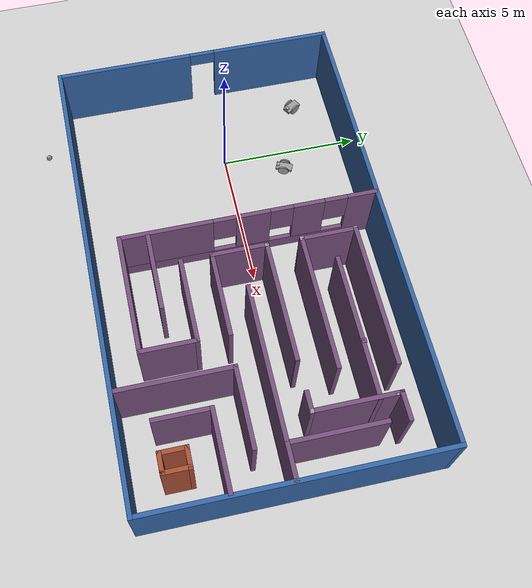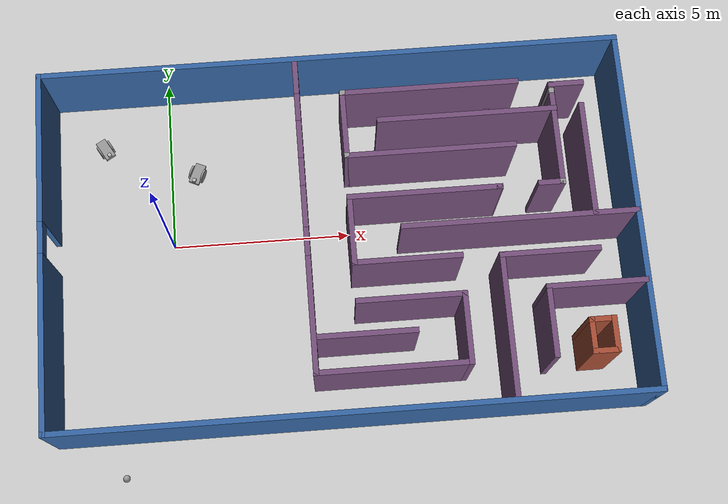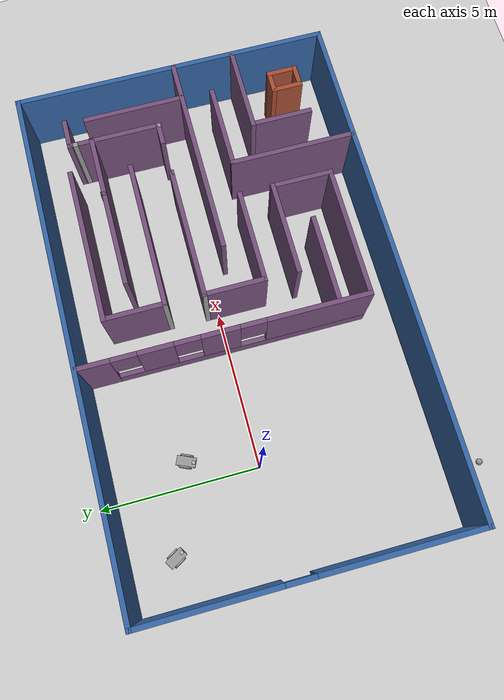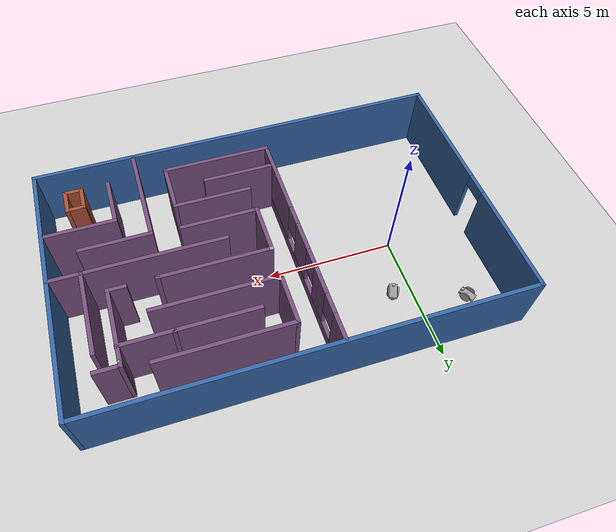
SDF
<sdf version="1.6">
 <world name="default">
  <light name="sun" type="directional">
   <pose>0 0 10 0 -0 0</pose>
   <diffuse>0.8 0.8 0.8 1</diffuse>
   <specular>0.2 0.2 0.2 1</specular>
   <attenuation>
    <range>1000</range>
    <constant>0.9</constant>
    <linear>0.01</linear>
    <quadratic>0.001</quadratic>
   </attenuation>
   <direction>-0.5 0.1 -0.9</direction>
  </light>
  <model name="ground_plane">
   <static>1</static>
   <link name="link">
    <collision name="collision">
     <geometry><plane><normal>0 0 1</normal><size>100 100</size></plane></geometry>
     <surface>
      <contact><collide_bitmask>65535</collide_bitmask></contact>
      <friction><ode><mu>100</mu><mu2>50</mu2></ode></friction>
     </surface>
    </collision>
    <visual name="visual">
     <cast_shadows>0</cast_shadows>
     <geometry><plane><normal>0 0 1</normal><size>100 100</size></plane></geometry>
     <material>
      <script><uri>file://media/materials/scripts/gazebo.material</uri><name>Gazebo/Grey</name></script>
     </material>
    </visual>
   </link>
  </model>
  <gravity>0 0 -9.8</gravity>
  <magnetic_field>6e-06 2.3e-05 -4.2e-05</magnetic_field>
  <atmosphere type="adiabatic"/>
  <physics name="default_physics" default="0" type="ode">
   <max_step_size>0.001</max_step_size>
   <real_time_factor>1</real_time_factor>
   <real_time_update_rate>1000</real_time_update_rate>
  </physics>
  <scene><ambient>0.4 0.4 0.4 1</ambient><background>0.7 0.7 0.7 1</background><shadows>1</shadows></scene>
  <audio><device>default</device></audio>
  <spherical_coordinates>
   <surface_model>EARTH_WGS84</surface_model>
   <latitude_deg>0</latitude_deg>
   <longitude_deg>0</longitude_deg>
   <elevation>0</elevation>
   <heading_deg>0</heading_deg>
  </spherical_coordinates>
  <model name="training_building">
   <pose>4.73937 -0.48154 0 0 -0 0</pose>
   <link name="Wall_0">
    <pose>-8.09 -0 0 0 -0 -1.5708</pose>
    <visual name="Wall_0_Visual_0">
     <pose>-2.92071 0 1.25 0 -0 0</pose>
     <geometry><box><size>4.30859 0.15 2.5</size></box></geometry>
     <material>
      <script><uri>file://media/materials/scripts/gazebo.material</uri><name>Gazebo/Grey</name></script>
      <ambient>0.203922 0.396078 0.643137 1</ambient>
     </material>
     <meta><layer>0</layer></meta>
    </visual>
    <collision name="Wall_0_Collision_0">
     <geometry><box><size>4.30859 0.15 2.5</size></box></geometry>
     <pose>-2.92071 0 1.25 0 -0 0</pose>
    </collision>
    <visual name="Wall_0_Visual_1">
     <pose>2.60429 0 1.25 0 -0 0</pose>
     <geometry><box><size>4.94141 0.15 2.5</size></box></geometry>
     <material>
      <script><uri>file://media/materials/scripts/gazebo.material</uri><name>Gazebo/Grey</name></script>
      <ambient>0.203922 0.396078 0.643137 1</ambient>
     </material>
     <meta><layer>0</layer></meta>
    </visual>
    <collision name="Wall_0_Collision_1">
     <geometry><box><size>4.94141 0.15 2.5</size></box></geometry>
     <pose>2.60429 0 1.25 0 -0 0</pose>
    </collision>
    <visual name="Wall_0_Visual_2">
     <pose>-0.316412 0 2.25 0 -0 0</pose>
     <geometry><box><size>0.9 0.15 0.5</size></box></geometry>
     <material>
      <script><uri>file://media/materials/scripts/gazebo.material</uri><name>Gazebo/Grey</name></script>
      <ambient>0.203922 0.396078 0.643137 1</ambient>
     </material>
     <meta><layer>0</layer></meta>
    </visual>
    <collision name="Wall_0_Collision_2">
     <geometry><box><size>0.9 0.15 0.5</size></box></geometry>
     <pose>-0.316412 0 2.25 0 -0 0</pose>
    </collision>
   </link>
   <link name="Wall_1">
    <collision name="Wall_1_Collision">
     <geometry><box><size>16.33 0.15 2.5</size></box></geometry>
     <pose>0 0 1.25 0 -0 0</pose>
    </collision>
    <visual name="Wall_1_Visual">
     <pose>0 0 1.25 0 -0 0</pose>
     <geometry><box><size>16.33 0.15 2.5</size></box></geometry>
     <material>
      <script><uri>file://media/materials/scripts/gazebo.material</uri><name>Gazebo/Grey</name></script>
      <ambient>0.203922 0.396078 0.643137 1</ambient>
     </material>
     <meta><layer>0</layer></meta>
    </visual>
    <pose>-0 -5 0 0 -0 0</pose>
   </link>
   <link name="Wall_107">
    <collision name="Wall_107_Collision">
     <geometry><box><size>4.25 0.15 2.5</size></box></geometry>
     <pose>0 0 1.25 0 -0 0</pose>
    </collision>
    <visual name="Wall_107_Visual">
     <pose>0 0 1.25 0 -0 0</pose>
     <geometry><box><size>4.25 0.15 2.5</size></box></geometry>
     <material>
      <script><uri>file://media/materials/scripts/gazebo.material</uri><name>Gazebo/Grey</name></script>
      <ambient>0.458824 0.313726 0.482353 1</ambient>
     </material>
     <meta><layer>0</layer></meta>
    </visual>
    <pose>2.35436 0.841485 0 0 -0 3.14159</pose>
   </link>
   <link name="Wall_108">
    <collision name="Wall_108_Collision">
     <geometry><box><size>0.15 0.15 2.5</size></box></geometry>
     <pose>0 0 1.25 0 -0 0</pose>
    </collision>
    <visual name="Wall_108_Visual">
     <pose>0 0 1.25 0 -0 0</pose>
     <geometry><box><size>0.15 0.15 2.5</size></box></geometry>
     <material>
      <script><uri>file://media/materials/scripts/gazebo.material</uri><name>Gazebo/Grey</name></script>
      <ambient>1 1 1 1</ambient>
     </material>
     <meta><layer>0</layer></meta>
    </visual>
    <pose>0.304359 0.841485 0 0 -0 0</pose>
   </link>
   <link name="Wall_109">
    <collision name="Wall_109_Collision">
     <geometry><box><size>2 0.15 2.5</size></box></geometry>
     <pose>0 0 1.25 0 -0 0</pose>
    </collision>
    <visual name="Wall_109_Visual">
     <pose>0 0 1.25 0 -0 0</pose>
     <geometry><box><size>2 0.15 2.5</size></box></geometry>
     <material>
      <script><uri>file://media/materials/scripts/gazebo.material</uri><name>Gazebo/Grey</name></script>
      <ambient>0.458824 0.313726 0.482353 1</ambient>
     </material>
     <meta><layer>0</layer></meta>
    </visual>
    <pose>0.304359 -0.083515 0 0 -0 -1.5708</pose>
   </link>
   <link name="Wall_11">
    <collision name="Wall_11_Collision">
     <geometry><box><size>2.75 0.15 2.5</size></box></geometry>
     <pose>0 0 1.25 0 -0 0</pose>
    </collision>
    <visual name="Wall_11_Visual">
     <pose>0 0 1.25 0 -0 0</pose>
     <geometry><box><size>2.75 0.15 2.5</size></box></geometry>
     <material>
      <script><uri>file://media/materials/scripts/gazebo.material</uri><name>Gazebo/Grey</name></script>
      <ambient>0.458824 0.313726 0.482353 1</ambient>
     </material>
     <meta><layer>0</layer></meta>
    </visual>
    <pose>0.486749 -2.96094 0 0 -0 0</pose>
   </link>
   <link name="Wall_110">
    <collision name="Wall_110_Collision">
     <geometry><box><size>3 0.15 2.5</size></box></geometry>
     <pose>0 0 1.25 0 -0 0</pose>
    </collision>
    <visual name="Wall_110_Visual">
     <pose>0 0 1.25 0 -0 0</pose>
     <geometry><box><size>3 0.15 2.5</size></box></geometry>
     <material>
      <script><uri>file://media/materials/scripts/gazebo.material</uri><name>Gazebo/Grey</name></script>
      <ambient>0.458824 0.313726 0.482353 1</ambient>
     </material>
     <meta><layer>0</layer></meta>
    </visual>
    <pose>1.72936 -1.00852 0 0 -0 0</pose>
   </link>
   <link name="Wall_113">
    <collision name="Wall_113_Collision">
     <geometry><box><size>0.15 0.15 2.5</size></box></geometry>
     <pose>0 0 1.25 0 -0 0</pose>
    </collision>
    <visual name="Wall_113_Visual">
     <pose>0 0 1.25 0 -0 0</pose>
     <geometry><box><size>0.15 0.15 2.5</size></box></geometry>
     <material>
      <script><uri>file://media/materials/scripts/gazebo.material</uri><name>Gazebo/Grey</name></script>
      <ambient>0.458824 0.313726 0.482353 1</ambient>
     </material>
     <meta><layer>0</layer></meta>
    </visual>
    <pose>4.27395 3.04022 0 0 -0 0</pose>
   </link>
   <link name="Wall_126">
    <collision name="Wall_126_Collision">
     <geometry><box><size>3 0.15 2.5</size></box></geometry>
     <pose>0 0 1.25 0 -0 0</pose>
    </collision>
    <visual name="Wall_126_Visual">
     <pose>0 0 1.25 0 -0 0</pose>
     <geometry><box><size>3 0.15 2.5</size></box></geometry>
     <material>
      <script><uri>file://media/materials/scripts/gazebo.material</uri><name>Gazebo/Grey</name></script>
      <ambient>0.458824 0.313726 0.482353 1</ambient>
     </material>
     <meta><layer>0</layer></meta>
    </visual>
    <pose>6.1436 2.28693 0 0 -0 -1.5708</pose>
   </link>
   <link name="Wall_127">
    <collision name="Wall_127_Collision">
     <geometry><box><size>0.15 0.15 2.5</size></box></geometry>
     <pose>0 0 1.25 0 -0 0</pose>
    </collision>
    <visual name="Wall_127_Visual">
     <pose>0 0 1.25 0 -0 0</pose>
     <geometry><box><size>0.15 0.15 2.5</size></box></geometry>
     <material>
      <script><uri>file://media/materials/scripts/gazebo.material</uri><name>Gazebo/Grey</name></script>
      <ambient>1 1 1 1</ambient>
     </material>
     <meta><layer>0</layer></meta>
    </visual>
    <pose>6.1436 0.861927 0 0 -0 0</pose>
   </link>
   <link name="Wall_128">
    <collision name="Wall_128_Collision">
     <geometry><box><size>0.75 0.15 2.5</size></box></geometry>
     <pose>0 0 1.25 0 -0 0</pose>
    </collision>
    <visual name="Wall_128_Visual">
     <pose>0 0 1.25 0 -0 0</pose>
     <geometry><box><size>0.75 0.15 2.5</size></box></geometry>
     <material>
      <script><uri>file://media/materials/scripts/gazebo.material</uri><name>Gazebo/Grey</name></script>
      <ambient>0.458824 0.313726 0.482353 1</ambient>
     </material>
     <meta><layer>0</layer></meta>
    </visual>
    <pose>5.8436 0.861927 0 0 -0 3.14159</pose>
   </link>
   <link name="Wall_133">
    <collision name="Wall_133_Collision">
     <geometry><box><size>4.75 0.15 2.5</size></box></geometry>
     <pose>0 0 1.25 0 -0 0</pose>
    </collision>
    <visual name="Wall_133_Visual">
     <pose>0 0 1.25 0 -0 0</pose>
     <geometry><box><size>4.75 0.15 2.5</size></box></geometry>
     <material>
      <script><uri>file://media/materials/scripts/gazebo.material</uri><name>Gazebo/Grey</name></script>
      <ambient>0.458824 0.313726 0.482353 1</ambient>
     </material>
     <meta><layer>0</layer></meta>
    </visual>
    <pose>2.62954 2.03445 0 0 -0 0</pose>
   </link>
   <link name="Wall_135">
    <collision name="Wall_135_Collision">
     <geometry><box><size>5 0.15 2.5</size></box></geometry>
     <pose>0 0 1.25 0 -0 0</pose>
    </collision>
    <visual name="Wall_135_Visual">
     <pose>0 0 1.25 0 -0 0</pose>
     <geometry><box><size>5 0.15 2.5</size></box></geometry>
     <material>
      <script><uri>file://media/materials/scripts/gazebo.material</uri><name>Gazebo/Grey</name></script>
      <ambient>0.458824 0.313726 0.482353 1</ambient>
     </material>
     <meta><layer>0</layer></meta>
    </visual>
    <pose>3.73389 3.00835 0 0 -0 3.14159</pose>
   </link>
   <link name="Wall_137">
    <collision name="Wall_137_Collision">
     <geometry><box><size>3.25 0.15 2.5</size></box></geometry>
     <pose>0 0 1.25 0 -0 0</pose>
    </collision>
    <visual name="Wall_137_Visual">
     <pose>0 0 1.25 0 -0 0</pose>
     <geometry><box><size>3.25 0.15 2.5</size></box></geometry>
     <material>
      <script><uri>file://media/materials/scripts/gazebo.material</uri><name>Gazebo/Grey</name></script>
      <ambient>0.458824 0.313726 0.482353 1</ambient>
     </material>
     <meta><layer>0</layer></meta>
    </visual>
    <pose>6.92365 1.48894 0 0 -0 -1.5708</pose>
   </link>
   <link name="Wall_139">
    <collision name="Wall_139_Collision">
     <geometry><box><size>5 0.15 2.5</size></box></geometry>
     <pose>0 0 1.25 0 -0 0</pose>
    </collision>
    <visual name="Wall_139_Visual">
     <pose>0 0 1.25 0 -0 0</pose>
     <geometry><box><size>5 0.15 2.5</size></box></geometry>
     <material>
      <script><uri>file://media/materials/scripts/gazebo.material</uri><name>Gazebo/Grey</name></script>
      <ambient>0.458824 0.313726 0.482353 1</ambient>
     </material>
     <meta><layer>0</layer></meta>
    </visual>
    <pose>2.75454 3.88445 0 0 -0 0</pose>
   </link>
   <link name="Wall_142">
    <collision name="Wall_142_Collision">
     <geometry><box><size>1 0.15 2.5</size></box></geometry>
     <pose>0 0 1.25 0 -0 0</pose>
    </collision>
    <visual name="Wall_142_Visual">
     <pose>0 0 1.25 0 -0 0</pose>
     <geometry><box><size>1 0.15 2.5</size></box></geometry>
     <material>
      <script><uri>file://media/materials/scripts/gazebo.material</uri><name>Gazebo/Grey</name></script>
      <ambient>0.458824 0.313726 0.482353 1</ambient>
     </material>
     <meta><layer>0</layer></meta>
    </visual>
    <pose>6.5686 3.71193 0 0 -0 0</pose>
   </link>
   <link name="Wall_15">
    <collision name="Wall_15_Collision">
     <geometry><box><size>4 0.15 2.5</size></box></geometry>
     <pose>0 0 1.25 0 -0 0</pose>
    </collision>
    <visual name="Wall_15_Visual">
     <pose>0 0 1.25 0 -0 0</pose>
     <geometry><box><size>4 0.15 2.5</size></box></geometry>
     <material>
      <script><uri>file://media/materials/scripts/gazebo.material</uri><name>Gazebo/Grey</name></script>
      <ambient>0.458824 0.313726 0.482353 1</ambient>
     </material>
     <meta><layer>0</layer></meta>
    </visual>
    <pose>4.27008 -3.00595 0 0 -0 1.5708</pose>
   </link>
   <link name="Wall_16">
    <collision name="Wall_16_Collision">
     <geometry><box><size>2.75 0.15 2.5</size></box></geometry>
     <pose>0 0 1.25 0 -0 0</pose>
    </collision>
    <visual name="Wall_16_Visual">
     <pose>0 0 1.25 0 -0 0</pose>
     <geometry><box><size>2.75 0.15 2.5</size></box></geometry>
     <material>
      <script><uri>file://media/materials/scripts/gazebo.material</uri><name>Gazebo/Grey</name></script>
      <ambient>0.458824 0.313726 0.482353 1</ambient>
     </material>
     <meta><layer>0</layer></meta>
    </visual>
    <pose>5.57008 -1.08095 0 0 -0 0</pose>
   </link>
   <link name="Wall_18">
    <collision name="Wall_18_Collision">
     <geometry><box><size>2.75 0.15 2.5</size></box></geometry>
     <pose>0 0 1.25 0 -0 0</pose>
    </collision>
    <visual name="Wall_18_Visual">
     <pose>0 0 1.25 0 -0 0</pose>
     <geometry><box><size>2.75 0.15 2.5</size></box></geometry>
     <material>
      <script><uri>file://media/materials/scripts/gazebo.material</uri><name>Gazebo/Grey</name></script>
      <ambient>0.458824 0.313726 0.482353 1</ambient>
     </material>
     <meta><layer>0</layer></meta>
    </visual>
    <pose>6.71662 -2.04629 0 0 -0 3.14159</pose>
   </link>
   <link name="Wall_19">
    <collision name="Wall_19_Collision">
     <geometry><box><size>2 0.15 2.5</size></box></geometry>
     <pose>0 0 1.25 0 -0 0</pose>
    </collision>
    <visual name="Wall_19_Visual">
     <pose>0 0 1.25 0 -0 0</pose>
     <geometry><box><size>2 0.15 2.5</size></box></geometry>
     <material>
      <script><uri>file://media/materials/scripts/gazebo.material</uri><name>Gazebo/Grey</name></script>
      <ambient>0.458824 0.313726 0.482353 1</ambient>
     </material>
     <meta><layer>0</layer></meta>
    </visual>
    <pose>5.41662 -2.97129 0 0 -0 -1.5708</pose>
   </link>
   <link name="Wall_2">
    <collision name="Wall_2_Collision">
     <geometry><box><size>10.15 0.15 2.5</size></box></geometry>
     <pose>0 0 1.25 0 -0 0</pose>
    </collision>
    <visual name="Wall_2_Visual">
     <pose>0 0 1.25 0 -0 0</pose>
     <geometry><box><size>10.15 0.15 2.5</size></box></geometry>
     <material>
      <script><uri>file://media/materials/scripts/gazebo.material</uri><name>Gazebo/Grey</name></script>
      <ambient>0.203922 0.396078 0.643137 1</ambient>
     </material>
     <meta><layer>0</layer></meta>
    </visual>
    <pose>8.09 -0 0 0 -0 1.5708</pose>
   </link>
   <link name="Wall_21">
    <collision name="Wall_21_Collision">
     <geometry><box><size>0.75 0.15 2.5</size></box></geometry>
     <pose>0 0 1.25 0 -0 0</pose>
    </collision>
    <visual name="Wall_21_Visual">
     <pose>0 0 1.25 0 -0 0</pose>
     <geometry><box><size>0.75 0.15 2.5</size></box></geometry>
     <material>
      <script><uri>file://media/materials/scripts/gazebo.material</uri><name>Gazebo/Bricks</name></script>
      <ambient>0.996078 0.47451 0.0196078 1</ambient>
     </material>
     <meta><layer>0</layer></meta>
    </visual>
    <pose>6.73357 -3.87559 0 0 -0 0</pose>
   </link>
   <link name="Wall_22">
    <collision name="Wall_22_Collision">
     <geometry><box><size>1 0.15 2.5</size></box></geometry>
     <pose>0 0 1.25 0 -0 0</pose>
    </collision>
    <visual name="Wall_22_Visual">
     <pose>0 0 1.25 0 -0 0</pose>
     <geometry><box><size>1 0.15 2.5</size></box></geometry>
     <material>
      <script><uri>file://media/materials/scripts/gazebo.material</uri><name>Gazebo/Bricks</name></script>
      <ambient>0.996078 0.47451 0.0196078 1</ambient>
     </material>
     <meta><layer>0</layer></meta>
    </visual>
    <pose>7.03357 -3.45058 0 0 -0 1.5708</pose>
   </link>
   <link name="Wall_23">
    <collision name="Wall_23_Collision">
     <geometry><box><size>0.75 0.15 2.5</size></box></geometry>
     <pose>0 0 1.25 0 -0 0</pose>
    </collision>
    <visual name="Wall_23_Visual">
     <pose>0 0 1.25 0 -0 0</pose>
     <geometry><box><size>0.75 0.15 2.5</size></box></geometry>
     <material>
      <script><uri>file://media/materials/scripts/gazebo.material</uri><name>Gazebo/Bricks</name></script>
      <ambient>0.996078 0.47451 0.0196078 1</ambient>
     </material>
     <meta><layer>0</layer></meta>
    </visual>
    <pose>6.73357 -3.02558 0 0 -0 3.14159</pose>
   </link>
   <link name="Wall_24">
    <collision name="Wall_24_Collision">
     <geometry><box><size>1 0.15 2.5</size></box></geometry>
     <pose>0 0 1.25 0 -0 0</pose>
    </collision>
    <visual name="Wall_24_Visual">
     <pose>0 0 1.25 0 -0 0</pose>
     <geometry><box><size>1 0.15 2.5</size></box></geometry>
     <material>
      <script><uri>file://media/materials/scripts/gazebo.material</uri><name>Gazebo/Bricks</name></script>
      <ambient>0.996078 0.47451 0.0196078 1</ambient>
     </material>
     <meta><layer>0</layer></meta>
    </visual>
    <pose>6.43357 -3.45058 0 0 -0 -1.5708</pose>
   </link>
   <link name="Wall_27">
    <collision name="Wall_27_Collision">
     <geometry><box><size>6.5 0.15 2.5</size></box></geometry>
     <pose>0 0 1.25 0 -0 0</pose>
    </collision>
    <visual name="Wall_27_Visual">
     <pose>0 0 1.25 0 -0 0</pose>
     <geometry><box><size>6.5 0.15 2.5</size></box></geometry>
     <material>
      <script><uri>file://media/materials/scripts/gazebo.material</uri><name>Gazebo/Grey</name></script>
      <ambient>0.458824 0.313726 0.482353 1</ambient>
     </material>
     <meta><layer>0</layer></meta>
    </visual>
    <pose>4.8768 -0.093868 0 0 -0 3.14159</pose>
   </link>
   <link name="Wall_3">
    <collision name="Wall_3_Collision">
     <geometry><box><size>16.33 0.15 2.5</size></box></geometry>
     <pose>0 0 1.25 0 -0 0</pose>
    </collision>
    <visual name="Wall_3_Visual">
     <pose>0 0 1.25 0 -0 0</pose>
     <geometry><box><size>16.33 0.15 2.5</size></box></geometry>
     <material>
      <script><uri>file://media/materials/scripts/gazebo.material</uri><name>Gazebo/Grey</name></script>
      <ambient>0.203922 0.396078 0.643137 1</ambient>
     </material>
     <meta><layer>0</layer></meta>
    </visual>
    <pose>-0 5 0 0 -0 3.14159</pose>
   </link>
   <link name="Wall_32">
    <collision name="Wall_32_Collision">
     <geometry><box><size>0.175179 0.15 2.5</size></box></geometry>
     <pose>0 0 1.25 0 -0 0</pose>
    </collision>
    <visual name="Wall_32_Visual">
     <pose>0 0 1.25 0 -0 0</pose>
     <geometry><box><size>0.175179 0.15 2.5</size></box></geometry>
     <material>
      <script><uri>file://media/materials/scripts/gazebo.material</uri><name>Gazebo/Grey</name></script>
      <ambient>0.458824 0.313726 0.482353 1</ambient>
     </material>
     <meta><layer>0</layer></meta>
    </visual>
    <pose>4.41695 0.841485 0 0 -0 3.14159</pose>
   </link>
   <link name="Wall_36">
    <collision name="Wall_36_Collision">
     <geometry><box><size>0.15 0.15 2.5</size></box></geometry>
     <pose>0 0 1.25 0 -0 0</pose>
    </collision>
    <visual name="Wall_36_Visual">
     <pose>0 0 1.25 0 -0 0</pose>
     <geometry><box><size>0.15 0.15 2.5</size></box></geometry>
     <material>
      <script><uri>file://media/materials/scripts/gazebo.material</uri><name>Gazebo/Grey</name></script>
      <ambient>1 1 1 1</ambient>
     </material>
     <meta><layer>0</layer></meta>
    </visual>
    <pose>0.329538 2.03445 0 0 -0 0</pose>
   </link>
   <link name="Wall_39">
    <collision name="Wall_39_Collision">
     <geometry><box><size>0.15 0.15 2.5</size></box></geometry>
     <pose>0 0 1.25 0 -0 0</pose>
    </collision>
    <visual name="Wall_39_Visual">
     <pose>0 0 1.25 0 -0 0</pose>
     <geometry><box><size>0.15 0.15 2.5</size></box></geometry>
     <material>
      <script><uri>file://media/materials/scripts/gazebo.material</uri><name>Gazebo/Grey</name></script>
      <ambient>1 1 1 1</ambient>
     </material>
     <meta><layer>0</layer></meta>
    </visual>
    <pose>6.14061 3.52891 0 0 -0 0</pose>
   </link>
   <link name="Wall_41">
    <collision name="Wall_41_Collision">
     <geometry><box><size>2 0.15 2.5</size></box></geometry>
     <pose>0 0 1.25 0 -0 0</pose>
    </collision>
    <visual name="Wall_41_Visual">
     <pose>0 0 1.25 0 -0 0</pose>
     <geometry><box><size>2 0.15 2.5</size></box></geometry>
     <material>
      <script><uri>file://media/materials/scripts/gazebo.material</uri><name>Gazebo/Grey</name></script>
      <ambient>0.458824 0.313726 0.482353 1</ambient>
     </material>
     <meta><layer>0</layer></meta>
    </visual>
    <pose>0.329538 2.95945 0 0 -0 1.5708</pose>
   </link>
   <link name="Wall_42">
    <collision name="Wall_42_Collision">
     <geometry><box><size>0.16 0.15 2.5</size></box></geometry>
     <pose>0 0 1.25 0 -0 0</pose>
    </collision>
    <visual name="Wall_42_Visual">
     <pose>0 0 1.25 0 -0 0</pose>
     <geometry><box><size>0.16 0.15 2.5</size></box></geometry>
     <material>
      <script><uri>file://media/materials/scripts/gazebo.material</uri><name>Gazebo/Grey</name></script>
      <ambient>1 1 1 1</ambient>
     </material>
     <meta><layer>0</layer></meta>
    </visual>
    <pose>0.334538 3.88445 0 0 -0 0</pose>
   </link>
   <link name="Wall_5">
    <pose>-0.931164 0.510113 0 0 -0 -1.5708</pose>
    <visual name="Wall_5_Visual_0">
     <pose>-3.97443 0 1.25 0 -0 0</pose>
     <geometry><box><size>1.05114 0.15 2.5</size></box></geometry>
     <material>
      <script><uri>file://media/materials/scripts/gazebo.material</uri><name>Gazebo/Grey</name></script>
      <ambient>0.458824 0.313726 0.482353 1</ambient>
     </material>
     <meta><layer>0</layer></meta>
    </visual>
    <collision name="Wall_5_Collision_0">
     <geometry><box><size>1.05114 0.15 2.5</size></box></geometry>
     <pose>-3.97443 0 1.25 0 -0 0</pose>
    </collision>
    <visual name="Wall_5_Visual_1">
     <pose>0.525569 0 0.25 0 -0 0</pose>
     <geometry><box><size>7.94886 0.15 0.5</size></box></geometry>
     <material>
      <script><uri>file://media/materials/scripts/gazebo.material</uri><name>Gazebo/Grey</name></script>
      <ambient>0.458824 0.313726 0.482353 1</ambient>
     </material>
     <meta><layer>0</layer></meta>
    </visual>
    <collision name="Wall_5_Collision_1">
     <geometry><box><size>7.94886 0.15 0.5</size></box></geometry>
     <pose>0.525569 0 0.25 0 -0 0</pose>
    </collision>
    <visual name="Wall_5_Visual_2">
     <pose>-2.10057 0 1.5 0 -0 0</pose>
     <geometry><box><size>1.09659 0.15 2</size></box></geometry>
     <material>
      <script><uri>file://media/materials/scripts/gazebo.material</uri><name>Gazebo/Grey</name></script>
      <ambient>0.458824 0.313726 0.482353 1</ambient>
     </material>
     <meta><layer>0</layer></meta>
    </visual>
    <collision name="Wall_5_Collision_2">
     <geometry><box><size>1.09659 0.15 2</size></box></geometry>
     <pose>-2.10057 0 1.5 0 -0 0</pose>
    </collision>
    <visual name="Wall_5_Visual_3">
     <pose>-0.158087 0 1.5 0 -0 0</pose>
     <geometry><box><size>1.18836 0.15 2</size></box></geometry>
     <material>
      <script><uri>file://media/materials/scripts/gazebo.material</uri><name>Gazebo/Grey</name></script>
      <ambient>0.458824 0.313726 0.482353 1</ambient>
     </material>
     <meta><layer>0</layer></meta>
    </visual>
    <collision name="Wall_5_Collision_3">
     <geometry><box><size>1.18836 0.15 2</size></box></geometry>
     <pose>-0.158087 0 1.5 0 -0 0</pose>
    </collision>
    <visual name="Wall_5_Visual_4">
     <pose>2.86805 0 1.5 0 -0 0</pose>
     <geometry><box><size>3.2639 0.15 2</size></box></geometry>
     <material>
      <script><uri>file://media/materials/scripts/gazebo.material</uri><name>Gazebo/Grey</name></script>
      <ambient>0.458824 0.313726 0.482353 1</ambient>
     </material>
     <meta><layer>0</layer></meta>
    </visual>
    <collision name="Wall_5_Collision_4">
     <geometry><box><size>3.2639 0.15 2</size></box></geometry>
     <pose>2.86805 0 1.5 0 -0 0</pose>
    </collision>
    <visual name="Wall_5_Visual_5">
     <pose>-3.04886 0 1.9 0 -0 0</pose>
     <geometry><box><size>0.8 0.15 1.2</size></box></geometry>
     <material>
      <script><uri>file://media/materials/scripts/gazebo.material</uri><name>Gazebo/Grey</name></script>
      <ambient>0.458824 0.313726 0.482353 1</ambient>
     </material>
     <meta><layer>0</layer></meta>
    </visual>
    <collision name="Wall_5_Collision_5">
     <geometry><box><size>0.8 0.15 1.2</size></box></geometry>
     <pose>-3.04886 0 1.9 0 -0 0</pose>
    </collision>
    <visual name="Wall_5_Visual_6">
     <pose>-1.15227 0 1.9 0 -0 0</pose>
     <geometry><box><size>0.8 0.15 1.2</size></box></geometry>
     <material>
      <script><uri>file://media/materials/scripts/gazebo.material</uri><name>Gazebo/Grey</name></script>
      <ambient>0.458824 0.313726 0.482353 1</ambient>
     </material>
     <meta><layer>0</layer></meta>
    </visual>
    <collision name="Wall_5_Collision_6">
     <geometry><box><size>0.8 0.15 1.2</size></box></geometry>
     <pose>-1.15227 0 1.9 0 -0 0</pose>
    </collision>
    <visual name="Wall_5_Visual_7">
     <pose>0.836096 0 1.9 0 -0 0</pose>
     <geometry><box><size>0.8 0.15 1.2</size></box></geometry>
     <material>
      <script><uri>file://media/materials/scripts/gazebo.material</uri><name>Gazebo/Grey</name></script>
      <ambient>0.458824 0.313726 0.482353 1</ambient>
     </material>
     <meta><layer>0</layer></meta>
    </visual>
    <collision name="Wall_5_Collision_7">
     <geometry><box><size>0.8 0.15 1.2</size></box></geometry>
     <pose>0.836096 0 1.9 0 -0 0</pose>
    </collision>
   </link>
   <link name="Wall_7">
    <collision name="Wall_7_Collision">
     <geometry><box><size>4.25 0.15 2.5</size></box></geometry>
     <pose>0 0 1.25 0 -0 0</pose>
    </collision>
    <visual name="Wall_7_Visual">
     <pose>0 0 1.25 0 -0 0</pose>
     <geometry><box><size>4.25 0.15 2.5</size></box></geometry>
     <material>
      <script><uri>file://media/materials/scripts/gazebo.material</uri><name>Gazebo/Grey</name></script>
      <ambient>0.458824 0.313726 0.482353 1</ambient>
     </material>
     <meta><layer>0</layer></meta>
    </visual>
    <pose>1.11884 -3.91489 0 0 -0 0</pose>
   </link>
   <link name="Wall_8">
    <collision name="Wall_8_Collision">
     <geometry><box><size>2 0.15 2.5</size></box></geometry>
     <pose>0 0 1.25 0 -0 0</pose>
    </collision>
    <visual name="Wall_8_Visual">
     <pose>0 0 1.25 0 -0 0</pose>
     <geometry><box><size>2 0.15 2.5</size></box></geometry>
     <material>
      <script><uri>file://media/materials/scripts/gazebo.material</uri><name>Gazebo/Grey</name></script>
      <ambient>0.458824 0.313726 0.482353 1</ambient>
     </material>
     <meta><layer>0</layer></meta>
    </visual>
    <pose>3.16884 -2.98989 0 0 -0 1.5708</pose>
   </link>
   <link name="Wall_9">
    <collision name="Wall_9_Collision">
     <geometry><box><size>3 0.15 2.5</size></box></geometry>
     <pose>0 0 1.25 0 -0 0</pose>
    </collision>
    <visual name="Wall_9_Visual">
     <pose>0 0 1.25 0 -0 0</pose>
     <geometry><box><size>3 0.15 2.5</size></box></geometry>
     <material>
      <script><uri>file://media/materials/scripts/gazebo.material</uri><name>Gazebo/Grey</name></script>
      <ambient>0.458824 0.313726 0.482353 1</ambient>
     </material>
     <meta><layer>0</layer></meta>
    </visual>
    <pose>1.74384 -2.06489 0 0 -0 3.14159</pose>
   </link>
   <static>1</static>
  </model>
  <model name="differential_rob">
   <link name="link_0">
    <inertial>
     <mass>1</mass>
     <inertia>
      <ixx>0.166667</ixx>
      <ixy>0</ixy>
      <ixz>0</ixz>
      <iyy>0.166667</iyy>
      <iyz>0</iyz>
      <izz>0.166667</izz>
     </inertia>
    </inertial>
    <pose>0.017523 -0.034711 -0.014942 0 -0 0</pose>
    <visual name="visual">
     <geometry><box><size>0.6 0.3 0.1</size></box></geometry>
     <material>
      <lighting>1</lighting>
      <script><uri>file://media/materials/scripts/gazebo.material</uri><name>Gazebo/Grey</name></script>
      <shader type="vertex"><normal_map>__default__</normal_map></shader>
      <ambient>0.3 0.3 0.3 1</ambient>
      <diffuse>0.7 0.7 0.7 1</diffuse>
      <specular>0.01 0.01 0.01 1</specular>
      <emissive>0 0 0 1</emissive>
     </material>
    </visual>
    <collision name="collision">
     <geometry><box><size>0.6 0.3 0.1</size></box></geometry>
     <surface>
      <friction>
       <ode><mu>1</mu><mu2>1</mu2><fdir1>0 0 0</fdir1><slip1>0</slip1><slip2>0</slip2></ode>
       <torsional>
        <coefficient>1</coefficient>
        <patch_radius>0</patch_radius>
        <surface_radius>0</surface_radius>
        <use_patch_radius>1</use_patch_radius>
        <ode><slip>0</slip></ode>
       </torsional>
      </friction>
      <bounce><restitution_coefficient>0</restitution_coefficient><threshold>1e+06</threshold></bounce>
      <contact>
       <collide_without_contact>0</collide_without_contact>
       <collide_without_contact_bitmask>1</collide_without_contact_bitmask>
       <collide_bitmask>1</collide_bitmask>
       <ode>
        <soft_cfm>0</soft_cfm>
        <soft_erp>0.2</soft_erp>
        <kp>1e+13</kp>
        <kd>1</kd>
        <max_vel>0.01</max_vel>
        <min_depth>0</min_depth>
       </ode>
       <bullet>
        <split_impulse>1</split_impulse>
        <split_impulse_penetration_threshold>-0.01</split_impulse_penetration_threshold>
        <soft_cfm>0</soft_cfm>
        <soft_erp>0.2</soft_erp>
        <kp>1e+13</kp>
        <kd>1</kd>
       </bullet>
      </contact>
     </surface>
    </collision>
   </link>
   <link name="link_1_clone">
    <inertial>
     <mass>1</mass>
     <inertia><ixx>0.145833</ixx><ixy>0</ixy><ixz>0</ixz><iyy>0.145833</iyy><iyz>0</iyz><izz>0.125</izz></inertia>
    </inertial>
    <pose>0.017523 0.140308 -0.014942 1.5707 -0 0</pose>
    <visual name="visual">
     <geometry><cylinder><radius>0.2</radius><length>0.05</length></cylinder></geometry>
     <material>
      <lighting>1</lighting>
      <script><uri>file://media/materials/scripts/gazebo.material</uri><name>Gazebo/Grey</name></script>
      <shader type="vertex"><normal_map>__default__</normal_map></shader>
      <ambient>0.3 0.3 0.3 1</ambient>
      <diffuse>0.7 0.7 0.7 1</diffuse>
      <specular>0.01 0.01 0.01 1</specular>
      <emissive>0 0 0 1</emissive>
     </material>
    </visual>
    <collision name="collision">
     <geometry><cylinder><radius>0.2</radius><length>0.05</length></cylinder></geometry>
     <surface>
      <friction>
       <ode><mu>1</mu><mu2>1</mu2><fdir1>0 0 0</fdir1><slip1>0</slip1><slip2>0</slip2></ode>
       <torsional>
        <coefficient>1</coefficient>
        <patch_radius>0</patch_radius>
        <surface_radius>0</surface_radius>
        <use_patch_radius>1</use_patch_radius>
        <ode><slip>0</slip></ode>
       </torsional>
      </friction>
      <bounce><restitution_coefficient>0</restitution_coefficient><threshold>1e+06</threshold></bounce>
      <contact>
       <collide_without_contact>0</collide_without_contact>
       <collide_without_contact_bitmask>1</collide_without_contact_bitmask>
       <collide_bitmask>1</collide_bitmask>
       <ode>
        <soft_cfm>0</soft_cfm>
        <soft_erp>0.2</soft_erp>
        <kp>1e+13</kp>
        <kd>1</kd>
        <max_vel>0.01</max_vel>
        <min_depth>0</min_depth>
       </ode>
       <bullet>
        <split_impulse>1</split_impulse>
        <split_impulse_penetration_threshold>-0.01</split_impulse_penetration_threshold>
        <soft_cfm>0</soft_cfm>
        <soft_erp>0.2</soft_erp>
        <kp>1e+13</kp>
        <kd>1</kd>
       </bullet>
      </contact>
     </surface>
    </collision>
   </link>
   <link name="link_1_clone_clone">
    <inertial>
     <mass>1</mass>
     <inertia><ixx>0.145833</ixx><ixy>0</ixy><ixz>0</ixz><iyy>0.145833</iyy><iyz>0</iyz><izz>0.125</izz></inertia>
    </inertial>
    <pose>0.017523 -0.20973 -0.014942 1.5707 -0 0</pose>
    <visual name="visual">
     <geometry><cylinder><radius>0.2</radius><length>0.05</length></cylinder></geometry>
     <material>
      <lighting>1</lighting>
      <script><uri>file://media/materials/scripts/gazebo.material</uri><name>Gazebo/Grey</name></script>
      <shader type="vertex"><normal_map>__default__</normal_map></shader>
      <ambient>0.3 0.3 0.3 1</ambient>
      <diffuse>0.7 0.7 0.7 1</diffuse>
      <specular>0.01 0.01 0.01 1</specular>
      <emissive>0 0 0 1</emissive>
     </material>
    </visual>
    <collision name="collision">
     <geometry><cylinder><radius>0.2</radius><length>0.05</length></cylinder></geometry>
     <surface>
      <friction>
       <ode><mu>1</mu><mu2>1</mu2><fdir1>0 0 0</fdir1><slip1>0</slip1><slip2>0</slip2></ode>
       <torsional>
        <coefficient>1</coefficient>
        <patch_radius>0</patch_radius>
        <surface_radius>0</surface_radius>
        <use_patch_radius>1</use_patch_radius>
        <ode><slip>0</slip></ode>
       </torsional>
      </friction>
      <bounce><restitution_coefficient>0</restitution_coefficient><threshold>1e+06</threshold></bounce>
      <contact>
       <collide_without_contact>0</collide_without_contact>
       <collide_without_contact_bitmask>1</collide_without_contact_bitmask>
       <collide_bitmask>1</collide_bitmask>
       <ode>
        <soft_cfm>0</soft_cfm>
        <soft_erp>0.2</soft_erp>
        <kp>1e+13</kp>
        <kd>1</kd>
        <max_vel>0.01</max_vel>
        <min_depth>0</min_depth>
       </ode>
       <bullet>
        <split_impulse>1</split_impulse>
        <split_impulse_penetration_threshold>-0.01</split_impulse_penetration_threshold>
        <soft_cfm>0</soft_cfm>
        <soft_erp>0.2</soft_erp>
        <kp>1e+13</kp>
        <kd>1</kd>
       </bullet>
      </contact>
     </surface>
    </collision>
   </link>
   <link name="link_2">
    <inertial>
     <mass>1</mass>
     <inertia><ixx>0.1</ixx><ixy>0</ixy><ixz>0</ixz><iyy>0.1</iyy><iyz>0</iyz><izz>0.1</izz></inertia>
    </inertial>
    <pose>0.177523 -0.024711 -0.139942 0 -0 0</pose>
    <visual name="visual">
     <geometry><sphere><radius>0.075</radius></sphere></geometry>
     <material>
      <lighting>1</lighting>
      <script><uri>file://media/materials/scripts/gazebo.material</uri><name>Gazebo/Grey</name></script>
      <shader type="vertex"><normal_map>__default__</normal_map></shader>
      <ambient>0.3 0.3 0.3 1</ambient>
      <diffuse>0.7 0.7 0.7 1</diffuse>
      <specular>0.01 0.01 0.01 1</specular>
      <emissive>0 0 0 1</emissive>
     </material>
    </visual>
    <collision name="collision">
     <geometry><sphere><radius>0.075</radius></sphere></geometry>
     <surface>
      <friction>
       <ode><mu>1</mu><mu2>1</mu2><fdir1>0 0 0</fdir1><slip1>0</slip1><slip2>0</slip2></ode>
       <torsional>
        <coefficient>1</coefficient>
        <patch_radius>0</patch_radius>
        <surface_radius>0</surface_radius>
        <use_patch_radius>1</use_patch_radius>
        <ode><slip>0</slip></ode>
       </torsional>
      </friction>
      <bounce><restitution_coefficient>0</restitution_coefficient><threshold>1e+06</threshold></bounce>
      <contact>
       <collide_without_contact>0</collide_without_contact>
       <collide_without_contact_bitmask>1</collide_without_contact_bitmask>
       <collide_bitmask>1</collide_bitmask>
       <ode>
        <soft_cfm>0</soft_cfm>
        <soft_erp>0.2</soft_erp>
        <kp>1e+13</kp>
        <kd>1</kd>
        <max_vel>0.01</max_vel>
        <min_depth>0</min_depth>
       </ode>
       <bullet>
        <split_impulse>1</split_impulse>
        <split_impulse_penetration_threshold>-0.01</split_impulse_penetration_threshold>
        <soft_cfm>0</soft_cfm>
        <soft_erp>0.2</soft_erp>
        <kp>1e+13</kp>
        <kd>1</kd>
       </bullet>
      </contact>
     </surface>
    </collision>
   </link>
   <link name="link_2_clone">
    <inertial>
     <mass>1</mass>
     <inertia><ixx>0.1</ixx><ixy>0</ixy><ixz>0</ixz><iyy>0.1</iyy><iyz>0</iyz><izz>0.1</izz></inertia>
    </inertial>
    <pose>-0.207477 -0.034711 -0.139942 0 -0 0</pose>
    <visual name="visual">
     <geometry><sphere><radius>0.075</radius></sphere></geometry>
     <material>
      <lighting>1</lighting>
      <script><uri>file://media/materials/scripts/gazebo.material</uri><name>Gazebo/Grey</name></script>
      <shader type="vertex"><normal_map>__default__</normal_map></shader>
      <ambient>0.3 0.3 0.3 1</ambient>
      <diffuse>0.7 0.7 0.7 1</diffuse>
      <specular>0.01 0.01 0.01 1</specular>
      <emissive>0 0 0 1</emissive>
     </material>
    </visual>
    <collision name="collision">
     <geometry><sphere><radius>0.075</radius></sphere></geometry>
     <surface>
      <friction>
       <ode><mu>1</mu><mu2>1</mu2><fdir1>0 0 0</fdir1><slip1>0</slip1><slip2>0</slip2></ode>
       <torsional>
        <coefficient>1</coefficient>
        <patch_radius>0</patch_radius>
        <surface_radius>0</surface_radius>
        <use_patch_radius>1</use_patch_radius>
        <ode><slip>0</slip></ode>
       </torsional>
      </friction>
      <bounce><restitution_coefficient>0</restitution_coefficient><threshold>1e+06</threshold></bounce>
      <contact>
       <collide_without_contact>0</collide_without_contact>
       <collide_without_contact_bitmask>1</collide_without_contact_bitmask>
       <collide_bitmask>1</collide_bitmask>
       <ode>
        <soft_cfm>0</soft_cfm>
        <soft_erp>0.2</soft_erp>
        <kp>1e+13</kp>
        <kd>1</kd>
        <max_vel>0.01</max_vel>
        <min_depth>0</min_depth>
       </ode>
       <bullet>
        <split_impulse>1</split_impulse>
        <split_impulse_penetration_threshold>-0.01</split_impulse_penetration_threshold>
        <soft_cfm>0</soft_cfm>
        <soft_erp>0.2</soft_erp>
        <kp>1e+13</kp>
        <kd>1</kd>
       </bullet>
      </contact>
     </surface>
    </collision>
   </link>
   <model name="depth_camera">
    <link name="link">
     <pose>0 0 0.05 0 -0 0</pose>
     <inertial>
      <mass>0.1</mass>
      <inertia>
       <ixx>0.000166667</ixx>
       <iyy>0.000166667</iyy>
       <izz>0.000166667</izz>
       <ixy>0</ixy>
       <ixz>0</ixz>
       <iyz>0</iyz>
      </inertia>
     </inertial>
     <collision name="collision"><geometry><box><size>0.1 0.1 0.1</size></box></geometry></collision>
     <visual name="visual"><geometry><box><size>0.1 0.1 0.1</size></box></geometry></visual>
     <sensor name="camera" type="depth">
      <camera name="__default__">
       <horizontal_fov>1.047</horizontal_fov>
       <image><width>320</width><height>240</height></image>
       <clip><near>0.1</near><far>100</far></clip>
      </camera>
      <always_on>1</always_on>
      <update_rate>30</update_rate>
      <visualize>1</visualize>
     </sensor>
    </link>
    <pose>0.251419 -0.035884 0.024712 0 -0 0</pose>
   </model>
   <joint name="link_0_JOINT_2" type="revolute">
    <parent>link_0</parent>
    <child>link_1_clone</child>
    <axis>
     <xyz>0 0 1</xyz>
     <use_parent_model_frame>0</use_parent_model_frame>
     <limit>
      <lower>-1.79769e+308</lower>
      <upper>1.79769e+308</upper>
      <effort>-1</effort>
      <velocity>-1</velocity>
     </limit>
     <dynamics>
      <spring_reference>0</spring_reference>
      <spring_stiffness>0</spring_stiffness>
      <damping>0</damping>
     </dynamics>
    </axis>
    <physics>
     <ode><limit><cfm>0</cfm><erp>0.2</erp></limit><suspension><cfm>0</cfm><erp>0.2</erp></suspension></ode>
    </physics>
   </joint>
   <joint name="link_0_JOINT_3" type="revolute">
    <parent>link_0</parent>
    <child>link_1_clone_clone</child>
    <axis>
     <xyz>0 0 1</xyz>
     <use_parent_model_frame>0</use_parent_model_frame>
     <limit>
      <lower>-1.79769e+308</lower>
      <upper>1.79769e+308</upper>
      <effort>-1</effort>
      <velocity>-1</velocity>
     </limit>
     <dynamics>
      <spring_reference>0</spring_reference>
      <spring_stiffness>0</spring_stiffness>
      <damping>0</damping>
     </dynamics>
    </axis>
    <physics>
     <ode><limit><cfm>0</cfm><erp>0.2</erp></limit><suspension><cfm>0</cfm><erp>0.2</erp></suspension></ode>
    </physics>
   </joint>
   <joint name="link_0_JOINT_5" type="ball">
    <parent>link_0</parent>
    <child>link_2_clone</child>
    <physics>
     <ode><limit><cfm>0</cfm><erp>0.2</erp></limit><suspension><cfm>0</cfm><erp>0.2</erp></suspension></ode>
    </physics>
   </joint>
   <joint name="link_0_JOINT_6" type="ball">
    <parent>link_0</parent>
    <child>link_2</child>
    <physics>
     <ode><limit><cfm>0</cfm><erp>0.2</erp></limit><suspension><cfm>0</cfm><erp>0.2</erp></suspension></ode>
    </physics>
   </joint>
   <joint name="link_0_JOINT_7" type="fixed">
    <parent>link_0</parent>
    <child>depth_camera::link</child>
    <physics>
     <ode><limit><cfm>0</cfm><erp>0.2</erp></limit><suspension><cfm>0</cfm><erp>0.2</erp></suspension></ode>
    </physics>
   </joint>
   <static>0</static>
   <pose>-1.88427 3.11265 0.214943 1e-05 -8e-06 -1.0383</pose>
  </model>
  <model name="differential_rob_0">
   <link name="link_0">
    <inertial>
     <mass>1</mass>
     <inertia>
      <ixx>0.166667</ixx>
      <ixy>0</ixy>
      <ixz>0</ixz>
      <iyy>0.166667</iyy>
      <iyz>0</iyz>
      <izz>0.166667</izz>
     </inertia>
    </inertial>
    <pose>0.017523 -0.034711 -0.014942 0 -0 0</pose>
    <visual name="visual">
     <geometry><box><size>0.6 0.3 0.1</size></box></geometry>
     <material>
      <lighting>1</lighting>
      <script><uri>file://media/materials/scripts/gazebo.material</uri><name>Gazebo/Grey</name></script>
      <shader type="vertex"><normal_map>__default__</normal_map></shader>
      <ambient>0.3 0.3 0.3 1</ambient>
      <diffuse>0.7 0.7 0.7 1</diffuse>
      <specular>0.01 0.01 0.01 1</specular>
      <emissive>0 0 0 1</emissive>
     </material>
    </visual>
    <collision name="collision">
     <geometry><box><size>0.6 0.3 0.1</size></box></geometry>
     <surface>
      <friction>
       <ode><mu>1</mu><mu2>1</mu2><fdir1>0 0 0</fdir1><slip1>0</slip1><slip2>0</slip2></ode>
       <torsional>
        <coefficient>1</coefficient>
        <patch_radius>0</patch_radius>
        <surface_radius>0</surface_radius>
        <use_patch_radius>1</use_patch_radius>
        <ode><slip>0</slip></ode>
       </torsional>
      </friction>
      <bounce><restitution_coefficient>0</restitution_coefficient><threshold>1e+06</threshold></bounce>
      <contact>
       <collide_without_contact>0</collide_without_contact>
       <collide_without_contact_bitmask>1</collide_without_contact_bitmask>
       <collide_bitmask>1</collide_bitmask>
       <ode>
        <soft_cfm>0</soft_cfm>
        <soft_erp>0.2</soft_erp>
        <kp>1e+13</kp>
        <kd>1</kd>
        <max_vel>0.01</max_vel>
        <min_depth>0</min_depth>
       </ode>
       <bullet>
        <split_impulse>1</split_impulse>
        <split_impulse_penetration_threshold>-0.01</split_impulse_penetration_threshold>
        <soft_cfm>0</soft_cfm>
        <soft_erp>0.2</soft_erp>
        <kp>1e+13</kp>
        <kd>1</kd>
       </bullet>
      </contact>
     </surface>
    </collision>
   </link>
   <link name="link_1_clone">
    <inertial>
     <mass>1</mass>
     <inertia><ixx>0.145833</ixx><ixy>0</ixy><ixz>0</ixz><iyy>0.145833</iyy><iyz>0</iyz><izz>0.125</izz></inertia>
    </inertial>
    <pose>0.017523 0.140308 -0.014942 1.5707 -0 0</pose>
    <visual name="visual">
     <geometry><cylinder><radius>0.2</radius><length>0.05</length></cylinder></geometry>
     <material>
      <lighting>1</lighting>
      <script><uri>file://media/materials/scripts/gazebo.material</uri><name>Gazebo/Grey</name></script>
      <shader type="vertex"><normal_map>__default__</normal_map></shader>
      <ambient>0.3 0.3 0.3 1</ambient>
      <diffuse>0.7 0.7 0.7 1</diffuse>
      <specular>0.01 0.01 0.01 1</specular>
      <emissive>0 0 0 1</emissive>
     </material>
    </visual>
    <collision name="collision">
     <geometry><cylinder><radius>0.2</radius><length>0.05</length></cylinder></geometry>
     <surface>
      <friction>
       <ode><mu>1</mu><mu2>1</mu2><fdir1>0 0 0</fdir1><slip1>0</slip1><slip2>0</slip2></ode>
       <torsional>
        <coefficient>1</coefficient>
        <patch_radius>0</patch_radius>
        <surface_radius>0</surface_radius>
        <use_patch_radius>1</use_patch_radius>
        <ode><slip>0</slip></ode>
       </torsional>
      </friction>
      <bounce><restitution_coefficient>0</restitution_coefficient><threshold>1e+06</threshold></bounce>
      <contact>
       <collide_without_contact>0</collide_without_contact>
       <collide_without_contact_bitmask>1</collide_without_contact_bitmask>
       <collide_bitmask>1</collide_bitmask>
       <ode>
        <soft_cfm>0</soft_cfm>
        <soft_erp>0.2</soft_erp>
        <kp>1e+13</kp>
        <kd>1</kd>
        <max_vel>0.01</max_vel>
        <min_depth>0</min_depth>
       </ode>
       <bullet>
        <split_impulse>1</split_impulse>
        <split_impulse_penetration_threshold>-0.01</split_impulse_penetration_threshold>
        <soft_cfm>0</soft_cfm>
        <soft_erp>0.2</soft_erp>
        <kp>1e+13</kp>
        <kd>1</kd>
       </bullet>
      </contact>
     </surface>
    </collision>
   </link>
   <link name="link_1_clone_clone">
    <inertial>
     <mass>1</mass>
     <inertia><ixx>0.145833</ixx><ixy>0</ixy><ixz>0</ixz><iyy>0.145833</iyy><iyz>0</iyz><izz>0.125</izz></inertia>
    </inertial>
    <pose>0.017523 -0.20973 -0.014942 1.5707 -0 0</pose>
    <visual name="visual">
     <geometry><cylinder><radius>0.2</radius><length>0.05</length></cylinder></geometry>
     <material>
      <lighting>1</lighting>
      <script><uri>file://media/materials/scripts/gazebo.material</uri><name>Gazebo/Grey</name></script>
      <shader type="vertex"><normal_map>__default__</normal_map></shader>
      <ambient>0.3 0.3 0.3 1</ambient>
      <diffuse>0.7 0.7 0.7 1</diffuse>
      <specular>0.01 0.01 0.01 1</specular>
      <emissive>0 0 0 1</emissive>
     </material>
    </visual>
    <collision name="collision">
     <geometry><cylinder><radius>0.2</radius><length>0.05</length></cylinder></geometry>
     <surface>
      <friction>
       <ode><mu>1</mu><mu2>1</mu2><fdir1>0 0 0</fdir1><slip1>0</slip1><slip2>0</slip2></ode>
       <torsional>
        <coefficient>1</coefficient>
        <patch_radius>0</patch_radius>
        <surface_radius>0</surface_radius>
        <use_patch_radius>1</use_patch_radius>
        <ode><slip>0</slip></ode>
       </torsional>
      </friction>
      <bounce><restitution_coefficient>0</restitution_coefficient><threshold>1e+06</threshold></bounce>
      <contact>
       <collide_without_contact>0</collide_without_contact>
       <collide_without_contact_bitmask>1</collide_without_contact_bitmask>
       <collide_bitmask>1</collide_bitmask>
       <ode>
        <soft_cfm>0</soft_cfm>
        <soft_erp>0.2</soft_erp>
        <kp>1e+13</kp>
        <kd>1</kd>
        <max_vel>0.01</max_vel>
        <min_depth>0</min_depth>
       </ode>
       <bullet>
        <split_impulse>1</split_impulse>
        <split_impulse_penetration_threshold>-0.01</split_impulse_penetration_threshold>
        <soft_cfm>0</soft_cfm>
        <soft_erp>0.2</soft_erp>
        <kp>1e+13</kp>
        <kd>1</kd>
       </bullet>
      </contact>
     </surface>
    </collision>
   </link>
   <link name="link_2">
    <inertial>
     <mass>1</mass>
     <inertia><ixx>0.1</ixx><ixy>0</ixy><ixz>0</ixz><iyy>0.1</iyy><iyz>0</iyz><izz>0.1</izz></inertia>
    </inertial>
    <pose>0.177523 -0.024711 -0.139942 0 -0 0</pose>
    <visual name="visual">
     <geometry><sphere><radius>0.075</radius></sphere></geometry>
     <material>
      <lighting>1</lighting>
      <script><uri>file://media/materials/scripts/gazebo.material</uri><name>Gazebo/Grey</name></script>
      <shader type="vertex"><normal_map>__default__</normal_map></shader>
      <ambient>0.3 0.3 0.3 1</ambient>
      <diffuse>0.7 0.7 0.7 1</diffuse>
      <specular>0.01 0.01 0.01 1</specular>
      <emissive>0 0 0 1</emissive>
     </material>
    </visual>
    <collision name="collision">
     <geometry><sphere><radius>0.075</radius></sphere></geometry>
     <surface>
      <friction>
       <ode><mu>1</mu><mu2>1</mu2><fdir1>0 0 0</fdir1><slip1>0</slip1><slip2>0</slip2></ode>
       <torsional>
        <coefficient>1</coefficient>
        <patch_radius>0</patch_radius>
        <surface_radius>0</surface_radius>
        <use_patch_radius>1</use_patch_radius>
        <ode><slip>0</slip></ode>
       </torsional>
      </friction>
      <bounce><restitution_coefficient>0</restitution_coefficient><threshold>1e+06</threshold></bounce>
      <contact>
       <collide_without_contact>0</collide_without_contact>
       <collide_without_contact_bitmask>1</collide_without_contact_bitmask>
       <collide_bitmask>1</collide_bitmask>
       <ode>
        <soft_cfm>0</soft_cfm>
        <soft_erp>0.2</soft_erp>
        <kp>1e+13</kp>
        <kd>1</kd>
        <max_vel>0.01</max_vel>
        <min_depth>0</min_depth>
       </ode>
       <bullet>
        <split_impulse>1</split_impulse>
        <split_impulse_penetration_threshold>-0.01</split_impulse_penetration_threshold>
        <soft_cfm>0</soft_cfm>
        <soft_erp>0.2</soft_erp>
        <kp>1e+13</kp>
        <kd>1</kd>
       </bullet>
      </contact>
     </surface>
    </collision>
   </link>
   <link name="link_2_clone">
    <inertial>
     <mass>1</mass>
     <inertia><ixx>0.1</ixx><ixy>0</ixy><ixz>0</ixz><iyy>0.1</iyy><iyz>0</iyz><izz>0.1</izz></inertia>
    </inertial>
    <pose>-0.207477 -0.034711 -0.139942 0 -0 0</pose>
    <visual name="visual">
     <geometry><sphere><radius>0.075</radius></sphere></geometry>
     <material>
      <lighting>1</lighting>
      <script><uri>file://media/materials/scripts/gazebo.material</uri><name>Gazebo/Grey</name></script>
      <shader type="vertex"><normal_map>__default__</normal_map></shader>
      <ambient>0.3 0.3 0.3 1</ambient>
      <diffuse>0.7 0.7 0.7 1</diffuse>
      <specular>0.01 0.01 0.01 1</specular>
      <emissive>0 0 0 1</emissive>
     </material>
    </visual>
    <collision name="collision">
     <geometry><sphere><radius>0.075</radius></sphere></geometry>
     <surface>
      <friction>
       <ode><mu>1</mu><mu2>1</mu2><fdir1>0 0 0</fdir1><slip1>0</slip1><slip2>0</slip2></ode>
       <torsional>
        <coefficient>1</coefficient>
        <patch_radius>0</patch_radius>
        <surface_radius>0</surface_radius>
        <use_patch_radius>1</use_patch_radius>
        <ode><slip>0</slip></ode>
       </torsional>
      </friction>
      <bounce><restitution_coefficient>0</restitution_coefficient><threshold>1e+06</threshold></bounce>
      <contact>
       <collide_without_contact>0</collide_without_contact>
       <collide_without_contact_bitmask>1</collide_without_contact_bitmask>
       <collide_bitmask>1</collide_bitmask>
       <ode>
        <soft_cfm>0</soft_cfm>
        <soft_erp>0.2</soft_erp>
        <kp>1e+13</kp>
        <kd>1</kd>
        <max_vel>0.01</max_vel>
        <min_depth>0</min_depth>
       </ode>
       <bullet>
        <split_impulse>1</split_impulse>
        <split_impulse_penetration_threshold>-0.01</split_impulse_penetration_threshold>
        <soft_cfm>0</soft_cfm>
        <soft_erp>0.2</soft_erp>
        <kp>1e+13</kp>
        <kd>1</kd>
       </bullet>
      </contact>
     </surface>
    </collision>
   </link>
   <model name="depth_camera">
    <link name="link">
     <pose>0 0 0.05 0 -0 0</pose>
     <inertial>
      <mass>0.1</mass>
      <inertia>
       <ixx>0.000166667</ixx>
       <iyy>0.000166667</iyy>
       <izz>0.000166667</izz>
       <ixy>0</ixy>
       <ixz>0</ixz>
       <iyz>0</iyz>
      </inertia>
     </inertial>
     <collision name="collision"><geometry><box><size>0.1 0.1 0.1</size></box></geometry></collision>
     <visual name="visual"><geometry><box><size>0.1 0.1 0.1</size></box></geometry></visual>
     <sensor name="camera" type="depth">
      <camera name="__default__">
       <horizontal_fov>1.047</horizontal_fov>
       <image><width>320</width><height>240</height></image>
       <clip><near>0.1</near><far>100</far></clip>
      </camera>
      <always_on>1</always_on>
      <update_rate>30</update_rate>
      <visualize>1</visualize>
     </sensor>
    </link>
    <pose>0.251419 -0.035884 0.024712 0 -0 0</pose>
   </model>
   <joint name="link_0_JOINT_2" type="revolute">
    <parent>link_0</parent>
    <child>link_1_clone</child>
    <axis>
     <xyz>0 0 1</xyz>
     <use_parent_model_frame>0</use_parent_model_frame>
     <limit>
      <lower>-1.79769e+308</lower>
      <upper>1.79769e+308</upper>
      <effort>-1</effort>
      <velocity>-1</velocity>
     </limit>
     <dynamics>
      <spring_reference>0</spring_reference>
      <spring_stiffness>0</spring_stiffness>
      <damping>0</damping>
     </dynamics>
    </axis>
    <physics>
     <ode><limit><cfm>0</cfm><erp>0.2</erp></limit><suspension><cfm>0</cfm><erp>0.2</erp></suspension></ode>
    </physics>
   </joint>
   <joint name="link_0_JOINT_3" type="revolute">
    <parent>link_0</parent>
    <child>link_1_clone_clone</child>
    <axis>
     <xyz>0 0 1</xyz>
     <use_parent_model_frame>0</use_parent_model_frame>
     <limit>
      <lower>-1.79769e+308</lower>
      <upper>1.79769e+308</upper>
      <effort>-1</effort>
      <velocity>-1</velocity>
     </limit>
     <dynamics>
      <spring_reference>0</spring_reference>
      <spring_stiffness>0</spring_stiffness>
      <damping>0</damping>
     </dynamics>
    </axis>
    <physics>
     <ode><limit><cfm>0</cfm><erp>0.2</erp></limit><suspension><cfm>0</cfm><erp>0.2</erp></suspension></ode>
    </physics>
   </joint>
   <joint name="link_0_JOINT_5" type="ball">
    <parent>link_0</parent>
    <child>link_2_clone</child>
    <physics>
     <ode><limit><cfm>0</cfm><erp>0.2</erp></limit><suspension><cfm>0</cfm><erp>0.2</erp></suspension></ode>
    </physics>
   </joint>
   <joint name="link_0_JOINT_6" type="ball">
    <parent>link_0</parent>
    <child>link_2</child>
    <physics>
     <ode><limit><cfm>0</cfm><erp>0.2</erp></limit><suspension><cfm>0</cfm><erp>0.2</erp></suspension></ode>
    </physics>
   </joint>
   <joint name="link_0_JOINT_7" type="fixed">
    <parent>link_0</parent>
    <child>depth_camera::link</child>
    <physics>
     <ode><limit><cfm>0</cfm><erp>0.2</erp></limit><suspension><cfm>0</cfm><erp>0.2</erp></suspension></ode>
    </physics>
   </joint>
   <static>0</static>
   <pose>0.786165 2.1319 0.214942 -0 3e-06 -1.98926</pose>
  </model>
  <model name="my_ball">
   <link name="link_0">
    <inertial>
     <mass>1</mass>
     <inertia><ixx>0.1</ixx><ixy>0</ixy><ixz>0</ixz><iyy>0.1</iyy><iyz>0</iyz><izz>0.1</izz></inertia>
    </inertial>
    <visual name="visual">
     <geometry><sphere><radius>0.1</radius></sphere></geometry>
     <material>
      <lighting>1</lighting>
      <script><uri>file://media/materials/scripts/gazebo.material</uri><name>Gazebo/Grey</name></script>
      <shader type="vertex"><normal_map>__default__</normal_map></shader>
      <ambient>1 1 1 1</ambient>
      <diffuse>1 1 1 1</diffuse>
      <specular>1 1 1 1</specular>
      <emissive>1 1 1 1</emissive>
     </material>
    </visual>
    <collision name="collision">
     <geometry><sphere><radius>0.1</radius></sphere></geometry>
     <surface>
      <friction>
       <ode><mu>1</mu><mu2>1</mu2><fdir1>0 0 0</fdir1><slip1>0</slip1><slip2>0</slip2></ode>
       <torsional>
        <coefficient>1</coefficient>
        <patch_radius>0</patch_radius>
        <surface_radius>0</surface_radius>
        <use_patch_radius>1</use_patch_radius>
        <ode><slip>0</slip></ode>
       </torsional>
      </friction>
      <bounce><restitution_coefficient>0</restitution_coefficient><threshold>1e+06</threshold></bounce>
      <contact>
       <collide_without_contact>0</collide_without_contact>
       <collide_without_contact_bitmask>1</collide_without_contact_bitmask>
       <collide_bitmask>1</collide_bitmask>
       <ode>
        <soft_cfm>0</soft_cfm>
        <soft_erp>0.2</soft_erp>
        <kp>1e+13</kp>
        <kd>1</kd>
        <max_vel>0.01</max_vel>
        <min_depth>0</min_depth>
       </ode>
       <bullet>
        <split_impulse>1</split_impulse>
        <split_impulse_penetration_threshold>-0.01</split_impulse_penetration_threshold>
        <soft_cfm>0</soft_cfm>
        <soft_erp>0.2</soft_erp>
        <kp>1e+13</kp>
        <kd>1</kd>
       </bullet>
      </contact>
     </surface>
    </collision>
   </link>
   <static>0</static>
   <pose>-1.57989 -6.51125 0.1 0.013733 -0 0</pose>
  </model>
  <plugin filename="libcollision_map_creator.so" name="collision_map_creator"/>
 </world>
</sdf>
